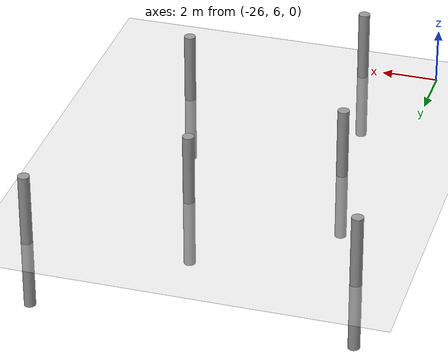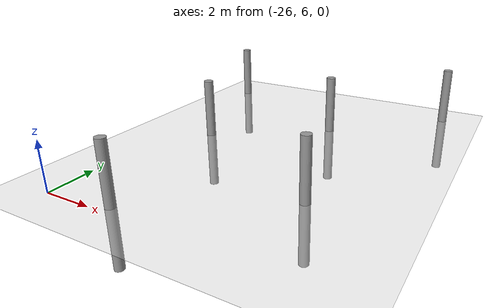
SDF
<sdf version="1.6">
 <world name="default">
  <model name="ground_plane">
   <static>1</static>
   <link name="link">
    <collision name="collision">
     <geometry><plane><normal>0 0 1</normal><size>100 100</size></plane></geometry>
     <surface><friction><ode><mu>100</mu><mu2>50</mu2></ode></friction></surface>
    </collision>
    <visual name="visual">
     <cast_shadows>0</cast_shadows>
     <geometry><plane><normal>0 0 1</normal><size>100 100</size></plane></geometry>
     <material>
      <script><uri>file://media/materials/scripts/gazebo.material</uri><name>Gazebo/Grey</name></script>
     </material>
    </visual>
   </link>
  </model>
  <model name="empty_pillars_5">
   <model name="empty_pillar_clone_0">
    <link name="link">
     <inertial>
      <mass>1</mass>
      <inertia><ixx>0.145833</ixx><ixy>0</ixy><ixz>0</ixz><iyy>0.145833</iyy><iyz>0</iyz><izz>0.125</izz></inertia>
     </inertial>
     <visual name="visual">
      <geometry><cylinder><radius>0.2</radius><length>5</length></cylinder></geometry>
      <material>
       <script><name>Gazebo/Grey</name><uri>file://media/materials/scripts/gazebo.material</uri></script>
       <shader type="vertex"><normal_map>__default__</normal_map></shader>
       <ambient>0.3 0.3 0.3 1</ambient>
       <diffuse>0.7 0.7 0.7 1</diffuse>
       <specular>0.01 0.01 0.01 1</specular>
       <emissive>0 0 0 1</emissive>
      </material>
     </visual>
     <collision name="collision">
      <geometry><cylinder><radius>0.05</radius><length>5</length></cylinder></geometry>
      <surface>
       <friction>
        <ode><mu>1</mu><mu2>1</mu2><fdir1>0 0 0</fdir1><slip1>0</slip1><slip2>0</slip2></ode>
        <torsional>
         <coefficient>1</coefficient>
         <patch_radius>0</patch_radius>
         <surface_radius>0</surface_radius>
         <use_patch_radius>1</use_patch_radius>
         <ode><slip>0</slip></ode>
        </torsional>
       </friction>
       <bounce><restitution_coefficient>0</restitution_coefficient><threshold>1e+06</threshold></bounce>
       <contact>
        <collide_without_contact>0</collide_without_contact>
        <collide_without_contact_bitmask>1</collide_without_contact_bitmask>
        <collide_bitmask>1</collide_bitmask>
        <ode>
         <soft_cfm>0</soft_cfm>
         <soft_erp>0.2</soft_erp>
         <kp>1e+13</kp>
         <kd>1</kd>
         <max_vel>0.01</max_vel>
         <min_depth>0</min_depth>
        </ode>
        <bullet>
         <split_impulse>1</split_impulse>
         <split_impulse_penetration_threshold>-0.01</split_impulse_penetration_threshold>
         <soft_cfm>0</soft_cfm>
         <soft_erp>0.2</soft_erp>
         <kp>1e+13</kp>
         <kd>1</kd>
        </bullet>
       </contact>
      </surface>
     </collision>
    </link>
    <static>0</static>
    <pose>10.3453 -7.35986 0 0 -0 0</pose>
   </model>
   <model name="empty_pillar_clone_11">
    <link name="link">
     <inertial>
      <mass>1</mass>
      <inertia><ixx>0.145833</ixx><ixy>0</ixy><ixz>0</ixz><iyy>0.145833</iyy><iyz>0</iyz><izz>0.125</izz></inertia>
     </inertial>
     <visual name="visual">
      <geometry><cylinder><radius>0.2</radius><length>5</length></cylinder></geometry>
      <material>
       <script><name>Gazebo/Grey</name><uri>file://media/materials/scripts/gazebo.material</uri></script>
       <shader type="vertex"><normal_map>__default__</normal_map></shader>
       <ambient>0.3 0.3 0.3 1</ambient>
       <diffuse>0.7 0.7 0.7 1</diffuse>
       <specular>0.01 0.01 0.01 1</specular>
       <emissive>0 0 0 1</emissive>
      </material>
     </visual>
     <collision name="collision">
      <geometry><cylinder><radius>0.05</radius><length>5</length></cylinder></geometry>
      <surface>
       <friction>
        <ode><mu>1</mu><mu2>1</mu2><fdir1>0 0 0</fdir1><slip1>0</slip1><slip2>0</slip2></ode>
        <torsional>
         <coefficient>1</coefficient>
         <patch_radius>0</patch_radius>
         <surface_radius>0</surface_radius>
         <use_patch_radius>1</use_patch_radius>
         <ode><slip>0</slip></ode>
        </torsional>
       </friction>
       <bounce><restitution_coefficient>0</restitution_coefficient><threshold>1e+06</threshold></bounce>
       <contact>
        <collide_without_contact>0</collide_without_contact>
        <collide_without_contact_bitmask>1</collide_without_contact_bitmask>
        <collide_bitmask>1</collide_bitmask>
        <ode>
         <soft_cfm>0</soft_cfm>
         <soft_erp>0.2</soft_erp>
         <kp>1e+13</kp>
         <kd>1</kd>
         <max_vel>0.01</max_vel>
         <min_depth>0</min_depth>
        </ode>
        <bullet>
         <split_impulse>1</split_impulse>
         <split_impulse_penetration_threshold>-0.01</split_impulse_penetration_threshold>
         <soft_cfm>0</soft_cfm>
         <soft_erp>0.2</soft_erp>
         <kp>1e+13</kp>
         <kd>1</kd>
        </bullet>
       </contact>
      </surface>
     </collision>
    </link>
    <static>0</static>
    <pose>7.98536 -17.8403 0 0 -0 0</pose>
   </model>
   <model name="empty_pillar_clone_3">
    <link name="link">
     <inertial>
      <mass>1</mass>
      <inertia><ixx>0.145833</ixx><ixy>0</ixy><ixz>0</ixz><iyy>0.145833</iyy><iyz>0</iyz><izz>0.125</izz></inertia>
     </inertial>
     <visual name="visual">
      <geometry><cylinder><radius>0.2</radius><length>5</length></cylinder></geometry>
      <material>
       <script><name>Gazebo/Grey</name><uri>file://media/materials/scripts/gazebo.material</uri></script>
       <shader type="vertex"><normal_map>__default__</normal_map></shader>
       <ambient>0.3 0.3 0.3 1</ambient>
       <diffuse>0.7 0.7 0.7 1</diffuse>
       <specular>0.01 0.01 0.01 1</specular>
       <emissive>0 0 0 1</emissive>
      </material>
     </visual>
     <collision name="collision">
      <geometry><cylinder><radius>0.05</radius><length>5</length></cylinder></geometry>
      <surface>
       <friction>
        <ode><mu>1</mu><mu2>1</mu2><fdir1>0 0 0</fdir1><slip1>0</slip1><slip2>0</slip2></ode>
        <torsional>
         <coefficient>1</coefficient>
         <patch_radius>0</patch_radius>
         <surface_radius>0</surface_radius>
         <use_patch_radius>1</use_patch_radius>
         <ode><slip>0</slip></ode>
        </torsional>
       </friction>
       <bounce><restitution_coefficient>0</restitution_coefficient><threshold>1e+06</threshold></bounce>
       <contact>
        <collide_without_contact>0</collide_without_contact>
        <collide_without_contact_bitmask>1</collide_without_contact_bitmask>
        <collide_bitmask>1</collide_bitmask>
        <ode>
         <soft_cfm>0</soft_cfm>
         <soft_erp>0.2</soft_erp>
         <kp>1e+13</kp>
         <kd>1</kd>
         <max_vel>0.01</max_vel>
         <min_depth>0</min_depth>
        </ode>
        <bullet>
         <split_impulse>1</split_impulse>
         <split_impulse_penetration_threshold>-0.01</split_impulse_penetration_threshold>
         <soft_cfm>0</soft_cfm>
         <soft_erp>0.2</soft_erp>
         <kp>1e+13</kp>
         <kd>1</kd>
        </bullet>
       </contact>
      </surface>
     </collision>
    </link>
    <static>0</static>
    <pose>5.99316 -11.2211 0 0 -0 0</pose>
   </model>
   <model name="empty_pillar_clone_4">
    <link name="link">
     <inertial>
      <mass>1</mass>
      <inertia><ixx>0.145833</ixx><ixy>0</ixy><ixz>0</ixz><iyy>0.145833</iyy><iyz>0</iyz><izz>0.125</izz></inertia>
     </inertial>
     <visual name="visual">
      <geometry><cylinder><radius>0.2</radius><length>5</length></cylinder></geometry>
      <material>
       <script><name>Gazebo/Grey</name><uri>file://media/materials/scripts/gazebo.material</uri></script>
       <shader type="vertex"><normal_map>__default__</normal_map></shader>
       <ambient>0.3 0.3 0.3 1</ambient>
       <diffuse>0.7 0.7 0.7 1</diffuse>
       <specular>0.01 0.01 0.01 1</specular>
       <emissive>0 0 0 1</emissive>
      </material>
     </visual>
     <collision name="collision">
      <geometry><cylinder><radius>0.05</radius><length>5</length></cylinder></geometry>
      <surface>
       <friction>
        <ode><mu>1</mu><mu2>1</mu2><fdir1>0 0 0</fdir1><slip1>0</slip1><slip2>0</slip2></ode>
        <torsional>
         <coefficient>1</coefficient>
         <patch_radius>0</patch_radius>
         <surface_radius>0</surface_radius>
         <use_patch_radius>1</use_patch_radius>
         <ode><slip>0</slip></ode>
        </torsional>
       </friction>
       <bounce><restitution_coefficient>0</restitution_coefficient><threshold>1e+06</threshold></bounce>
       <contact>
        <collide_without_contact>0</collide_without_contact>
        <collide_without_contact_bitmask>1</collide_without_contact_bitmask>
        <collide_bitmask>1</collide_bitmask>
        <ode>
         <soft_cfm>0</soft_cfm>
         <soft_erp>0.2</soft_erp>
         <kp>1e+13</kp>
         <kd>1</kd>
         <max_vel>0.01</max_vel>
         <min_depth>0</min_depth>
        </ode>
        <bullet>
         <split_impulse>1</split_impulse>
         <split_impulse_penetration_threshold>-0.01</split_impulse_penetration_threshold>
         <soft_cfm>0</soft_cfm>
         <soft_erp>0.2</soft_erp>
         <kp>1e+13</kp>
         <kd>1</kd>
        </bullet>
       </contact>
      </surface>
     </collision>
    </link>
    <static>0</static>
    <pose>1.48428 -14.2998 0 0 -0 0</pose>
   </model>
   <model name="empty_pillar_clone_46">
    <link name="link">
     <inertial>
      <mass>1</mass>
      <inertia><ixx>0.145833</ixx><ixy>0</ixy><ixz>0</ixz><iyy>0.145833</iyy><iyz>0</iyz><izz>0.125</izz></inertia>
     </inertial>
     <visual name="visual">
      <geometry><cylinder><radius>0.2</radius><length>5</length></cylinder></geometry>
      <material>
       <script><name>Gazebo/Grey</name><uri>file://media/materials/scripts/gazebo.material</uri></script>
       <shader type="vertex"><normal_map>__default__</normal_map></shader>
       <ambient>0.3 0.3 0.3 1</ambient>
       <diffuse>0.7 0.7 0.7 1</diffuse>
       <specular>0.01 0.01 0.01 1</specular>
       <emissive>0 0 0 1</emissive>
      </material>
     </visual>
     <collision name="collision">
      <geometry><cylinder><radius>0.05</radius><length>5</length></cylinder></geometry>
      <surface>
       <friction>
        <ode><mu>1</mu><mu2>1</mu2><fdir1>0 0 0</fdir1><slip1>0</slip1><slip2>0</slip2></ode>
        <torsional>
         <coefficient>1</coefficient>
         <patch_radius>0</patch_radius>
         <surface_radius>0</surface_radius>
         <use_patch_radius>1</use_patch_radius>
         <ode><slip>0</slip></ode>
        </torsional>
       </friction>
       <bounce><restitution_coefficient>0</restitution_coefficient><threshold>1e+06</threshold></bounce>
       <contact>
        <collide_without_contact>0</collide_without_contact>
        <collide_without_contact_bitmask>1</collide_without_contact_bitmask>
        <collide_bitmask>1</collide_bitmask>
        <ode>
         <soft_cfm>0</soft_cfm>
         <soft_erp>0.2</soft_erp>
         <kp>1e+13</kp>
         <kd>1</kd>
         <max_vel>0.01</max_vel>
         <min_depth>0</min_depth>
        </ode>
        <bullet>
         <split_impulse>1</split_impulse>
         <split_impulse_penetration_threshold>-0.01</split_impulse_penetration_threshold>
         <soft_cfm>0</soft_cfm>
         <soft_erp>0.2</soft_erp>
         <kp>1e+13</kp>
         <kd>1</kd>
        </bullet>
       </contact>
      </surface>
     </collision>
    </link>
    <static>0</static>
    <pose>2.45033 -21.185 0 0 -0 0</pose>
   </model>
   <model name="empty_pillar_clone_47">
    <link name="link">
     <inertial>
      <mass>1</mass>
      <inertia><ixx>0.145833</ixx><ixy>0</ixy><ixz>0</ixz><iyy>0.145833</iyy><iyz>0</iyz><izz>0.125</izz></inertia>
     </inertial>
     <visual name="visual">
      <geometry><cylinder><radius>0.2</radius><length>5</length></cylinder></geometry>
      <material>
       <script><name>Gazebo/Grey</name><uri>file://media/materials/scripts/gazebo.material</uri></script>
       <shader type="vertex"><normal_map>__default__</normal_map></shader>
       <ambient>0.3 0.3 0.3 1</ambient>
       <diffuse>0.7 0.7 0.7 1</diffuse>
       <specular>0.01 0.01 0.01 1</specular>
       <emissive>0 0 0 1</emissive>
      </material>
     </visual>
     <collision name="collision">
      <geometry><cylinder><radius>0.05</radius><length>5</length></cylinder></geometry>
      <surface>
       <friction>
        <ode><mu>1</mu><mu2>1</mu2><fdir1>0 0 0</fdir1><slip1>0</slip1><slip2>0</slip2></ode>
        <torsional>
         <coefficient>1</coefficient>
         <patch_radius>0</patch_radius>
         <surface_radius>0</surface_radius>
         <use_patch_radius>1</use_patch_radius>
         <ode><slip>0</slip></ode>
        </torsional>
       </friction>
       <bounce><restitution_coefficient>0</restitution_coefficient><threshold>1e+06</threshold></bounce>
       <contact>
        <collide_without_contact>0</collide_without_contact>
        <collide_without_contact_bitmask>1</collide_without_contact_bitmask>
        <collide_bitmask>1</collide_bitmask>
        <ode>
         <soft_cfm>0</soft_cfm>
         <soft_erp>0.2</soft_erp>
         <kp>1e+13</kp>
         <kd>1</kd>
         <max_vel>0.01</max_vel>
         <min_depth>0</min_depth>
        </ode>
        <bullet>
         <split_impulse>1</split_impulse>
         <split_impulse_penetration_threshold>-0.01</split_impulse_penetration_threshold>
         <soft_cfm>0</soft_cfm>
         <soft_erp>0.2</soft_erp>
         <kp>1e+13</kp>
         <kd>1</kd>
        </bullet>
       </contact>
      </surface>
     </collision>
    </link>
    <static>0</static>
    <pose>-0.569433 -7.97346 0 0 -0 0</pose>
   </model>
   <static>0</static>
   <pose>-25.786 27.5577 0 0 -0 0</pose>
  </model>
 </world>
</sdf>
